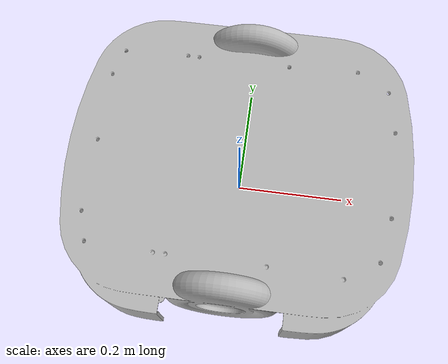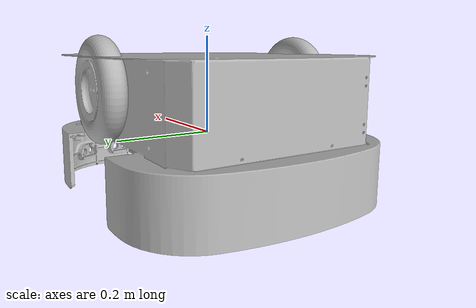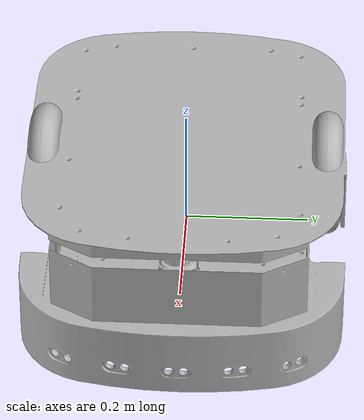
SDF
<sdf version='1.4'>
  <model name='mrp2'>
    <link name='base_link'>
      <pose>0 0 0 0 -0 0</pose>
      <inertial>
        <pose>0.01173 0.00025945 0.17611 0 -0 0</pose>
        <mass>8.2296</mass>
        <inertia>
          <ixx>0.2353</ixx>
          <ixy>-4.2958e-05</ixy>
          <ixz>-0.0005191</ixz>
          <iyy>0.34732</iyy>
          <iyz>0.00027687</iyz>
          <izz>0.46112</izz>
        </inertia>
      </inertial>
      <collision name='base_link_collision'>
        <pose>0 0 0 0 -0 0</pose>
        <geometry>
          <mesh>
            <scale>1 1 1</scale>
            <uri>model://mrp2/meshes/base_link.STL</uri>
          </mesh>
        </geometry>
      </collision>
      <visual name='base_link_visual'>
        <pose>0 0 0 0 -0 0</pose>
        <geometry>
          <mesh>
            <scale>1 1 1</scale>
            <uri>model://mrp2/meshes/base_link.STL</uri>
          </mesh>
        </geometry>
      </visual>
      <velocity_decay>
        <linear>0</linear>
        <angular>0</angular>
      </velocity_decay>
    </link>
    <link name='left_wheel'>
      <pose>0 0.229 0.09995 0 -0 0</pose>
      <inertial>
        <pose>0.00035418 0.012823 0.00040491 0 -0 0</pose>
        <mass>0.70105</mass>
        <inertia>
          <ixx>0.0013558</ixx>
          <ixy>2.5216e-07</ixy>
          <ixz>-6.7933e-06</ixz>
          <iyy>0.0024362</iyy>
          <iyz>2.0242e-07</iyz>
          <izz>0.0013575</izz>
        </inertia>
      </inertial>
      <collision name='left_wheel_collision'>
        <pose>0 0 0 0 -0 0</pose>
        <geometry>
          <mesh>
            <scale>1 1 1</scale>
            <uri>model://mrp2/meshes/left_wheel.STL</uri>
          </mesh>
        </geometry>
      </collision>
      <visual name='left_wheel_visual'>
        <pose>0 0 0 0 -0 0</pose>
        <geometry>
          <mesh>
            <scale>1 1 1</scale>
            <uri>model://mrp2/meshes/left_wheel.STL</uri>
          </mesh>
        </geometry>
      </visual>
      <velocity_decay>
        <linear>0</linear>
        <angular>0</angular>
      </velocity_decay>
    </link>
    <joint name='left_wheel_joint' type='revolute'>
      <child>left_wheel</child>
      <parent>base_link</parent>
      <axis>
        <xyz>0 1 0</xyz>
        <limit>
          <lower>0</lower>
          <upper>0</upper>
          <effort>0</effort>
          <velocity>0</velocity>
        </limit>
        <dynamics/>
      </axis>
    </joint>
    <link name='right_wheel'>
      <pose>0 -0.229 0.09995 0 -0 0</pose>
      <inertial>
        <pose>0.00035418 -0.012823 -0.00040491 0 -0 0</pose>
        <mass>0.70105</mass>
        <inertia>
          <ixx>0.0013558</ixx>
          <ixy>-2.5216e-07</ixy>
          <ixz>6.7933e-06</ixz>
          <iyy>0.0024362</iyy>
          <iyz>2.0242e-07</iyz>
          <izz>0.0013575</izz>
        </inertia>
      </inertial>
      <collision name='right_wheel_collision'>
        <pose>0 0 0 0 -0 0</pose>
        <geometry>
          <mesh>
            <scale>1 1 1</scale>
            <uri>model://mrp2/meshes/right_wheel.STL</uri>
          </mesh>
        </geometry>
      </collision>
      <visual name='right_wheel_visual'>
        <pose>0 0 0 0 -0 0</pose>
        <geometry>
          <mesh>
            <scale>1 1 1</scale>
            <uri>model://mrp2/meshes/right_wheel.STL</uri>
          </mesh>
        </geometry>
      </visual>
      <velocity_decay>
        <linear>0</linear>
        <angular>0</angular>
      </velocity_decay>
    </link>
    <joint name='right_wheel_joint' type='revolute'>
      <child>right_wheel</child>
      <parent>base_link</parent>
      <axis>
        <xyz>0 -1 0</xyz>
        <limit>
          <lower>0</lower>
          <upper>0</upper>
          <effort>0</effort>
          <velocity>0</velocity>
        </limit>
        <dynamics/>
      </axis>
    </joint>
  </model>
</sdf>
